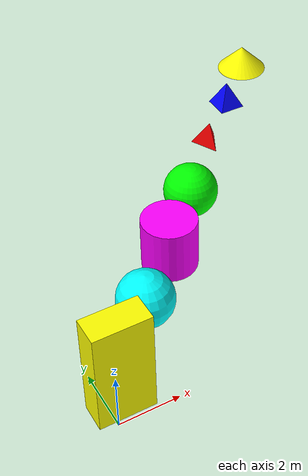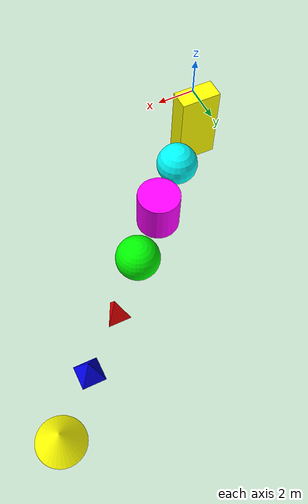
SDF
<?xml version="1.0" ?>
<sdf version="1.7">
  <world name="default">

    <light name='custom_sun' type='directional'>
      <cast_shadows>1</cast_shadows>
      <pose>0 0 15 0 0 0</pose>
      <diffuse>0.7 0.7 0.7 1</diffuse>
      <specular>0.3 0.3 0.3 1</specular>
      <attenuation>
        <range>1500</range>
        <constant>0.8</constant>
        <linear>0.02</linear>
        <quadratic>0.002</quadratic>
      </attenuation>
      <direction>-0.6 0.2 -0.8</direction>
      <spot>
        <inner_angle>0</inner_angle>
        <outer_angle>0</outer_angle>
        <falloff>0</falloff>
      </spot>
    </light>

<model name="box_45dcad02-2c1e-4ded-a86b-a9bbfc17c1aa">
  <static>true</static>
  <pose>1 2 0 0 0 0</pose>
  <link name="link">
    <collision name="collision">

      <geometry>
        <box>
          <size>2 1 4</size>
        </box>
      </geometry>

    </collision>
    <visual name="visual">

      <geometry>
        <box>
          <size>2 1 4</size>
        </box>
      </geometry>

      <material>
        <ambient>1 1 0 1</ambient>
        <diffuse>1 1 0 1</diffuse>
      </material>

    </visual>
  </link>
</model>

<model name="sphere_e833aedf-9339-429a-918b-58ca9ff8095c">
  <static>true</static>
  <pose>3 4 0 0 0 0</pose>
  <link name="link">
    <collision name="collision">

      <geometry>
        <sphere>
          <radius>1</radius>
        </sphere>
      </geometry>

    </collision>
    <visual name="visual">

      <geometry>
        <sphere>
          <radius>1</radius>
        </sphere>
      </geometry>

      <material>
        <ambient>0 1 1 1</ambient>
        <diffuse>0 1 1 1</diffuse>
      </material>

    </visual>
  </link>
</model>

<model name="cylinder_71510555-fcfd-49d3-a805-5a4c9a224b1c">
  <static>true</static>
  <pose>5 6 0 0 0 0</pose>
  <link name="link">
    <collision name="collision">

      <geometry>
        <cylinder>
          <radius>1</radius>
          <length>2</length>
        </cylinder>
      </geometry>

    </collision>
    <visual name="visual">

      <geometry>
        <cylinder>
          <radius>1</radius>
          <length>2</length>
        </cylinder>
      </geometry>

      <material>
        <ambient>1 0 1 1</ambient>
        <diffuse>1 0 1 1</diffuse>
      </material>

    </visual>
  </link>
</model>

<model name="ellipsoid_f99ba436-7b32-4e56-aa98-3a30855b580b">
  <static>true</static>
  <pose>7 8 0 0 0 0</pose>
  <link name="link">
    <collision name="collision">

      <geometry>
        <mesh>
          <uri>model://ellipsoid/meshes/ellipsoid.dae</uri>
          <scale>1 1 1</scale>
        </mesh>
      </geometry>

    </collision>
    <visual name="visual">

      <geometry>
        <mesh>
          <uri>model://ellipsoid/meshes/ellipsoid.dae</uri>
          <scale>1 1 1</scale>
        </mesh>
      </geometry>

      <material>
        <ambient>0 1 0 1</ambient>
        <diffuse>0 1 0 1</diffuse>
      </material>

    </visual>
  </link>
</model>

<model name="tetrahedron_9e9948bb-d7d3-449e-84e7-d3d7df4af708">
  <static>true</static>
  <pose>9 10 0 0 0 0</pose>
  <link name="link">
    <collision name="collision">

      <geometry>
        <mesh>
          <uri>model://tetrahedron/meshes/tetrahedron.dae</uri>
          <scale>1 1 1</scale>
        </mesh>
      </geometry>

    </collision>
    <visual name="visual">

      <geometry>
        <mesh>
          <uri>model://tetrahedron/meshes/tetrahedron.dae</uri>
          <scale>1 1 1</scale>
        </mesh>
      </geometry>

      <material>
        <ambient>1 0 0 1</ambient>
        <diffuse>1 0 0 1</diffuse>
      </material>

    </visual>
  </link>
</model>

<model name="squarepyramid_5256cf83-7f83-4179-800b-c81b4ed69529">
  <static>true</static>
  <pose>11 12 0 0 0 0</pose>
  <link name="link">
    <collision name="collision">

      <geometry>
        <mesh>
          <uri>model://square_pyramid/meshes/square_pyramid.dae</uri>
          <scale>1 1 1</scale>
        </mesh>
      </geometry>

    </collision>
    <visual name="visual">

      <geometry>
        <mesh>
          <uri>model://square_pyramid/meshes/square_pyramid.dae</uri>
          <scale>1 1 1</scale>
        </mesh>
      </geometry>

      <material>
        <ambient>0 0 1 1</ambient>
        <diffuse>0 0 1 1</diffuse>
      </material>

    </visual>
  </link>
</model>

<model name="cone_937c7a00-0aa0-4f1e-997a-e7c07f1d0ea6">
  <static>true</static>
  <pose>13 14 0 0 0 0</pose>
  <link name="link">
    <collision name="collision">

      <geometry>
        <mesh>
          <uri>model://cone/meshes/cone.dae</uri>
          <scale>1 1 1</scale>
        </mesh>
      </geometry>

    </collision>
    <visual name="visual">

      <geometry>
        <mesh>
          <uri>model://cone/meshes/cone.dae</uri>
          <scale>1 1 1</scale>
        </mesh>
      </geometry>

      <material>
        <ambient>1 1 0 1</ambient>
        <diffuse>1 1 0 1</diffuse>
      </material>

    </visual>
  </link>
</model>

    <gravity>0 0 -9.81</gravity>
    <magnetic_field>1e-06 2e-05 -3e-05</magnetic_field>
    <atmosphere type='adiabatic'/>
    <physics type='bullet'>
      <max_step_size>0.002</max_step_size>
      <real_time_factor>1</real_time_factor>
      <real_time_update_rate>500</real_time_update_rate>
    </physics>
    <scene>
      <ambient>0.3 0.3 0.3 1</ambient>
      <background>0.8 0.8 0.8 1</background>
      <shadows>1</shadows>
    </scene>
    <audio>
      <device>custom</device>
    </audio>
    <wind/>
    <spherical_coordinates>
      <surface_model>EARTH_WGS84</surface_model>
      <latitude_deg>0</latitude_deg>
      <longitude_deg>0</longitude_deg>
      <elevation>0</elevation>
      <heading_deg>0</heading_deg>
    </spherical_coordinates>

  </world>
</sdf>
